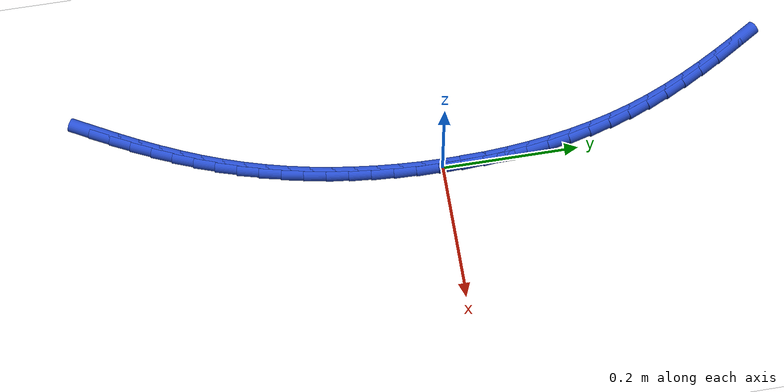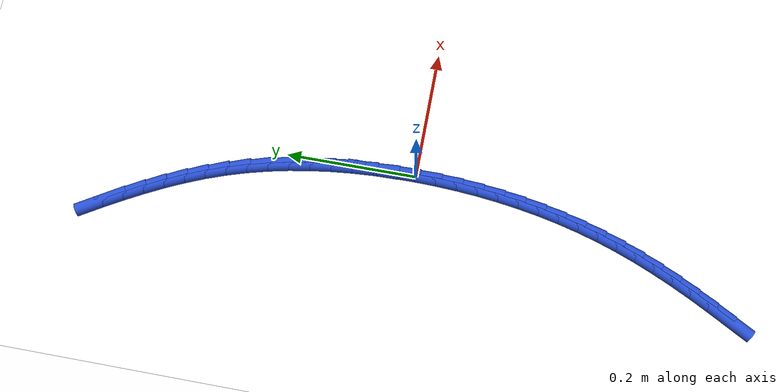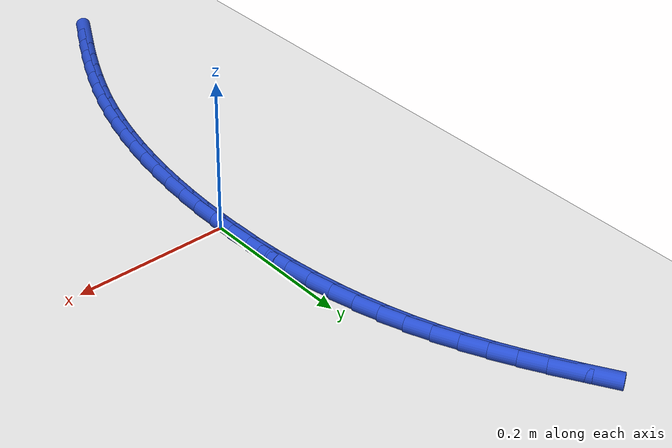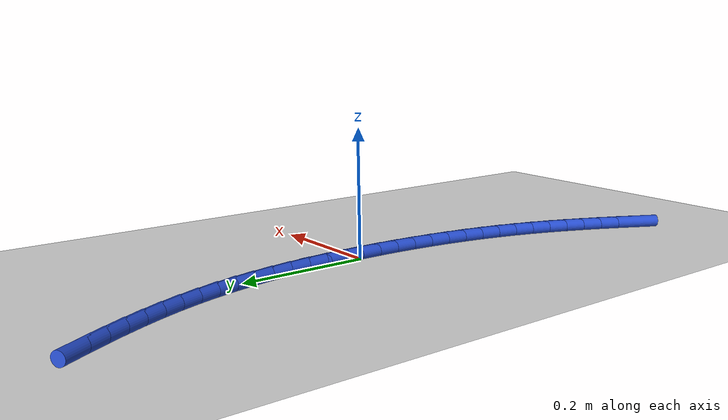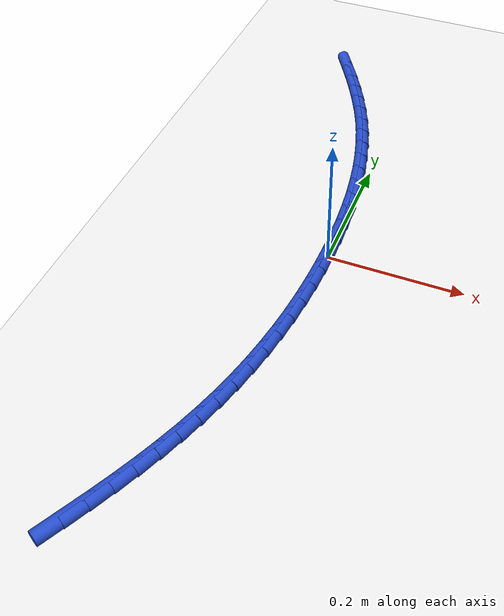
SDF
<sdf version="1.6">
 <world name="default">
  <model name="ground_plane">
   <static>1</static>
   <link name="link">
    <collision name="collision">
     <geometry><plane><normal>0 0 1</normal><size>100 100</size></plane></geometry>
     <surface><friction><ode><mu>100</mu><mu2>50</mu2></ode></friction></surface>
    </collision>
    <visual name="visual">
     <cast_shadows>0</cast_shadows>
     <geometry><plane><normal>0 0 1</normal><size>100 100</size></plane></geometry>
     <material>
      <script><uri>file://media/materials/scripts/gazebo.material</uri><name>Gazebo/WhiteGlow</name></script>
     </material>
    </visual>
   </link>
  </model>
  <model name="line">
   <link name="link_0">
    <pose>-8.673617379884035e-18 6.938893903907228e-18 0.01 0 1.57 -1.5631943589973318</pose>
    <collision name="collision">
     <geometry><cylinder><radius>0.01</radius><length>0.08</length></cylinder></geometry>
    </collision>
    <visual name="visual">
     <material>
      <script><name>Gazebo/Blue</name><uri>file://media/materials/scripts/gazebo.material</uri></script>
     </material>
     <geometry><cylinder><radius>0.01</radius><length>0.08</length></cylinder></geometry>
    </visual>
   </link>
   <link name="link_1">
    <pose>-0.00024784472184227464 0.03260207805600657 0.01 0 1.57 -1.533790845903109</pose>
    <collision name="collision">
     <geometry><cylinder><radius>0.01</radius><length>0.08</length></cylinder></geometry>
    </collision>
    <visual name="visual">
     <material>
      <script><name>Gazebo/Blue</name><uri>file://media/materials/scripts/gazebo.material</uri></script>
     </material>
     <geometry><cylinder><radius>0.01</radius><length>0.08</length></cylinder></geometry>
    </visual>
   </link>
   <link name="link_2">
    <pose>-0.0014533980365739327 0.065164902218467 0.01 0 1.57 -1.5024519334454958</pose>
    <collision name="collision">
     <geometry><cylinder><radius>0.01</radius><length>0.08</length></cylinder></geometry>
    </collision>
    <visual name="visual">
     <material>
      <script><name>Gazebo/Blue</name><uri>file://media/materials/scripts/gazebo.material</uri></script>
     </material>
     <geometry><cylinder><radius>0.01</radius><length>0.08</length></cylinder></geometry>
    </visual>
   </link>
   <link name="link_3">
    <pose>-0.0036753420684664316 0.09762525940442635 0.01 0 1.57 -1.4690571654817277</pose>
    <collision name="collision">
     <geometry><cylinder><radius>0.01</radius><length>0.08</length></cylinder></geometry>
    </collision>
    <visual name="visual">
     <material>
      <script><name>Gazebo/Blue</name><uri>file://media/materials/scripts/gazebo.material</uri></script>
     </material>
     <geometry><cylinder><radius>0.01</radius><length>0.08</length></cylinder></geometry>
    </visual>
   </link>
   <link name="link_4">
    <pose>-0.006972358941791235 0.12991993653092962 0.01 0 1.57 -1.4334882361334793</pose>
    <collision name="collision">
     <geometry><cylinder><radius>0.01</radius><length>0.08</length></cylinder></geometry>
    </collision>
    <visual name="visual">
     <material>
      <script><name>Gazebo/Blue</name><uri>file://media/materials/scripts/gazebo.material</uri></script>
     </material>
     <geometry><cylinder><radius>0.01</radius><length>0.08</length></cylinder></geometry>
    </visual>
   </link>
   <link name="link_5">
    <pose>-0.0114031307808198 0.16198572051502183 0.01 0 1.57 -1.395633090768564</pose>
    <collision name="collision">
     <geometry><cylinder><radius>0.01</radius><length>0.08</length></cylinder></geometry>
    </collision>
    <visual name="visual">
     <material>
      <script><name>Gazebo/Blue</name><uri>file://media/materials/scripts/gazebo.material</uri></script>
     </material>
     <geometry><cylinder><radius>0.01</radius><length>0.08</length></cylinder></geometry>
    </visual>
   </link>
   <link name="link_6">
    <pose>-0.017026339709823587 0.1937593982737481 0.01 0 1.57 -1.355391174735926</pose>
    <collision name="collision">
     <geometry><cylinder><radius>0.01</radius><length>0.08</length></cylinder></geometry>
    </collision>
    <visual name="visual">
     <material>
      <script><name>Gazebo/Blue</name><uri>file://media/materials/scripts/gazebo.material</uri></script>
     </material>
     <geometry><cylinder><radius>0.01</radius><length>0.08</length></cylinder></geometry>
    </visual>
   </link>
   <link name="link_7">
    <pose>-0.023900667853074056 0.22517775672415336 0.01 0 1.57 -1.3126799209108013</pose>
    <collision name="collision">
     <geometry><cylinder><radius>0.01</radius><length>0.08</length></cylinder></geometry>
    </collision>
    <visual name="visual">
     <material>
      <script><name>Gazebo/Blue</name><uri>file://media/materials/scripts/gazebo.material</uri></script>
     </material>
     <geometry><cylinder><radius>0.01</radius><length>0.08</length></cylinder></geometry>
    </visual>
   </link>
   <link name="link_8">
    <pose>-0.03208479733484265 0.2561775827832827 0.01 0 1.57 -1.2674424665983375</pose>
    <collision name="collision">
     <geometry><cylinder><radius>0.01</radius><length>0.08</length></cylinder></geometry>
    </collision>
    <visual name="visual">
     <material>
      <script><name>Gazebo/Blue</name><uri>file://media/materials/scripts/gazebo.material</uri></script>
     </material>
     <geometry><cylinder><radius>0.01</radius><length>0.08</length></cylinder></geometry>
    </visual>
   </link>
   <link name="link_9">
    <pose>-0.04163741027940083 0.286695663368181 0.01 0 1.57 -1.2201450502456008</pose>
    <collision name="collision">
     <geometry><cylinder><radius>0.01</radius><length>0.08</length></cylinder></geometry>
    </collision>
    <visual name="visual">
     <material>
      <script><name>Gazebo/Blue</name><uri>file://media/materials/scripts/gazebo.material</uri></script>
     </material>
     <geometry><cylinder><radius>0.01</radius><length>0.08</length></cylinder></geometry>
    </visual>
   </link>
   <link name="link_10">
    <pose>-0.052603454218247386 0.31667664067899987 0.01 0 1.57 -1.175355784121566</pose>
    <collision name="collision">
     <geometry><cylinder><radius>0.01</radius><length>0.08</length></cylinder></geometry>
    </collision>
    <visual name="visual">
     <material>
      <script><name>Gazebo/Blue</name><uri>file://media/materials/scripts/gazebo.material</uri></script>
     </material>
     <geometry><cylinder><radius>0.01</radius><length>0.08</length></cylinder></geometry>
    </visual>
   </link>
   <link name="link_11">
    <pose>-0.06490129482653313 0.346137553406577 0.01 0 1.57 -1.1356481326888397</pose>
    <collision name="collision">
     <geometry><cylinder><radius>0.01</radius><length>0.08</length></cylinder></geometry>
    </collision>
    <visual name="visual">
     <material>
      <script><name>Gazebo/Blue</name><uri>file://media/materials/scripts/gazebo.material</uri></script>
     </material>
     <geometry><cylinder><radius>0.01</radius><length>0.08</length></cylinder></geometry>
    </visual>
   </link>
   <link name="link_12">
    <pose>-0.0783810119978711 0.37513449521447456 0.01 0 1.57 -1.1011148195272438</pose>
    <collision name="collision">
     <geometry><cylinder><radius>0.01</radius><length>0.08</length></cylinder></geometry>
    </collision>
    <visual name="visual">
     <material>
      <script><name>Gazebo/Blue</name><uri>file://media/materials/scripts/gazebo.material</uri></script>
     </material>
     <geometry><cylinder><radius>0.01</radius><length>0.08</length></cylinder></geometry>
    </visual>
   </link>
   <link name="link_13">
    <pose>-0.09289202157249465 0.4037239395610827 0.01 0 1.57 -1.0717514270232071</pose>
    <collision name="collision">
     <geometry><cylinder><radius>0.01</radius><length>0.08</length></cylinder></geometry>
    </collision>
    <visual name="visual">
     <material>
      <script><name>Gazebo/Blue</name><uri>file://media/materials/scripts/gazebo.material</uri></script>
     </material>
     <geometry><cylinder><radius>0.01</radius><length>0.08</length></cylinder></geometry>
    </visual>
   </link>
   <link name="link_14">
    <pose>-0.10828373939063721 0.43196235990479137 0.01 0 1.57 -1.0475078406975615</pose>
    <collision name="collision">
     <geometry><cylinder><radius>0.01</radius><length>0.08</length></cylinder></geometry>
    </collision>
    <visual name="visual">
     <material>
      <script><name>Gazebo/Blue</name><uri>file://media/materials/scripts/gazebo.material</uri></script>
     </material>
     <geometry><cylinder><radius>0.01</radius><length>0.08</length></cylinder></geometry>
    </visual>
   </link>
   <link name="link_15">
    <pose>-0.1244055812925321 0.4599062297039905 0.01 0 1.57 -1.0283118102689512</pose>
    <collision name="collision">
     <geometry><cylinder><radius>0.01</radius><length>0.08</length></cylinder></geometry>
    </collision>
    <visual name="visual">
     <material>
      <script><name>Gazebo/Blue</name><uri>file://media/materials/scripts/gazebo.material</uri></script>
     </material>
     <geometry><cylinder><radius>0.01</radius><length>0.08</length></cylinder></geometry>
    </visual>
   </link>
   <link name="link_194">
    <pose>-0.13240891676840674 -0.49128358701604147 0.01 0 1.57 1.076474518854536</pose>
    <collision name="collision">
     <geometry><cylinder><radius>0.01</radius><length>0.08</length></cylinder></geometry>
    </collision>
    <visual name="visual">
     <material>
      <script><name>Gazebo/Blue</name><uri>file://media/materials/scripts/gazebo.material</uri></script>
     </material>
     <geometry><cylinder><radius>0.01</radius><length>0.08</length></cylinder></geometry>
    </visual>
   </link>
   <link name="link_195">
    <pose>-0.11703430901947032 -0.4627567482119977 0.01 0 1.57 1.0967771943091267</pose>
    <collision name="collision">
     <geometry><cylinder><radius>0.01</radius><length>0.08</length></cylinder></geometry>
    </collision>
    <visual name="visual">
     <material>
      <script><name>Gazebo/Blue</name><uri>file://media/materials/scripts/gazebo.material</uri></script>
     </material>
     <geometry><cylinder><radius>0.01</radius><length>0.08</length></cylinder></geometry>
    </visual>
   </link>
   <link name="link_196">
    <pose>-0.10232639292357265 -0.4340881601790381 0.01 0 1.57 1.120535093554734</pose>
    <collision name="collision">
     <geometry><cylinder><radius>0.01</radius><length>0.08</length></cylinder></geometry>
    </collision>
    <visual name="visual">
     <material>
      <script><name>Gazebo/Blue</name><uri>file://media/materials/scripts/gazebo.material</uri></script>
     </material>
     <geometry><cylinder><radius>0.01</radius><length>0.08</length></cylinder></geometry>
    </visual>
   </link>
   <link name="link_197">
    <pose>-0.08837279059864679 -0.40522126379652107 0.01 0 1.57 1.1477461611692792</pose>
    <collision name="collision">
     <geometry><cylinder><radius>0.01</radius><length>0.08</length></cylinder></geometry>
    </collision>
    <visual name="visual">
     <material>
      <script><name>Gazebo/Blue</name><uri>file://media/materials/scripts/gazebo.material</uri></script>
     </material>
     <geometry><cylinder><radius>0.01</radius><length>0.08</length></cylinder></geometry>
    </visual>
   </link>
   <link name="link_198">
    <pose>-0.07526112416262468 -0.37609949994380265 0.01 0 1.57 1.178373302555576</pose>
    <collision name="collision">
     <geometry><cylinder><radius>0.01</radius><length>0.08</length></cylinder></geometry>
    </collision>
    <visual name="visual">
     <material>
      <script><name>Gazebo/Blue</name><uri>file://media/materials/scripts/gazebo.material</uri></script>
     </material>
     <geometry><cylinder><radius>0.01</radius><length>0.08</length></cylinder></geometry>
    </visual>
   </link>
   <link name="link_199">
    <pose>-0.06307901573343869 -0.3466663095002401 0.01 0 1.57 1.2123349641000651</pose>
    <collision name="collision">
     <geometry><cylinder><radius>0.01</radius><length>0.08</length></cylinder></geometry>
    </collision>
    <visual name="visual">
     <material>
      <script><name>Gazebo/Blue</name><uri>file://media/materials/scripts/gazebo.material</uri></script>
     </material>
     <geometry><cylinder><radius>0.01</radius><length>0.08</length></cylinder></geometry>
    </visual>
   </link>
   <link name="link_200">
    <pose>-0.051914087429021136 -0.3168651333451901 0.01 0 1.57 1.249481566591976</pose>
    <collision name="collision">
     <geometry><cylinder><radius>0.01</radius><length>0.08</length></cylinder></geometry>
    </collision>
    <visual name="visual">
     <material>
      <script><name>Gazebo/Blue</name><uri>file://media/materials/scripts/gazebo.material</uri></script>
     </material>
     <geometry><cylinder><radius>0.01</radius><length>0.08</length></cylinder></geometry>
    </visual>
   </link>
   <link name="link_201">
    <pose>-0.04185359086625735 -0.28663974319954627 0.01 0 1.57 1.2881754333781197</pose>
    <collision name="collision">
     <geometry><cylinder><radius>0.01</radius><length>0.08</length></cylinder></geometry>
    </collision>
    <visual name="visual">
     <material>
      <script><name>Gazebo/Blue</name><uri>file://media/materials/scripts/gazebo.material</uri></script>
     </material>
     <geometry><cylinder><radius>0.01</radius><length>0.08</length></cylinder></geometry>
    </visual>
   </link>
   <link name="link_202">
    <pose>-0.03294667838517411 -0.2559679318035338 0.01 0 1.57 1.3256523981056247</pose>
    <collision name="collision">
     <geometry><cylinder><radius>0.01</radius><length>0.08</length></cylinder></geometry>
    </collision>
    <visual name="visual">
     <material>
      <script><name>Gazebo/Blue</name><uri>file://media/materials/scripts/gazebo.material</uri></script>
     </material>
     <geometry><cylinder><radius>0.01</radius><length>0.08</length></cylinder></geometry>
    </visual>
   </link>
   <link name="link_203">
    <pose>-0.025171877415581353 -0.22489055691157506 0.01 0 1.57 1.3616594029078135</pose>
    <collision name="collision">
     <geometry><cylinder><radius>0.01</radius><length>0.08</length></cylinder></geometry>
    </collision>
    <visual name="visual">
     <material>
      <script><name>Gazebo/Blue</name><uri>file://media/materials/scripts/gazebo.material</uri></script>
     </material>
     <geometry><cylinder><radius>0.01</radius><length>0.08</length></cylinder></geometry>
    </visual>
   </link>
   <link name="link_204">
    <pose>-0.01850005232711983 -0.19345531906198668 0.01 0 1.57 1.3962507457581255</pose>
    <collision name="collision">
     <geometry><cylinder><radius>0.01</radius><length>0.08</length></cylinder></geometry>
    </collision>
    <visual name="visual">
     <material>
      <script><name>Gazebo/Blue</name><uri>file://media/materials/scripts/gazebo.material</uri></script>
     </material>
     <geometry><cylinder><radius>0.01</radius><length>0.08</length></cylinder></geometry>
    </visual>
   </link>
   <link name="link_205">
    <pose>-0.012902067489430487 -0.1617099187930859 0.01 0 1.57 1.4294893671448345</pose>
    <collision name="collision">
     <geometry><cylinder><radius>0.01</radius><length>0.08</length></cylinder></geometry>
    </collision>
    <visual name="visual">
     <material>
      <script><name>Gazebo/Blue</name><uri>file://media/materials/scripts/gazebo.material</uri></script>
     </material>
     <geometry><cylinder><radius>0.01</radius><length>0.08</length></cylinder></geometry>
    </visual>
   </link>
   <link name="link_206">
    <pose>-0.008348787272154287 -0.12970205664318998 0.01 0 1.57 1.4614446193605473</pose>
    <collision name="collision">
     <geometry><cylinder><radius>0.01</radius><length>0.08</length></cylinder></geometry>
    </collision>
    <visual name="visual">
     <material>
      <script><name>Gazebo/Blue</name><uri>file://media/materials/scripts/gazebo.material</uri></script>
     </material>
     <geometry><cylinder><radius>0.01</radius><length>0.08</length></cylinder></geometry>
    </visual>
   </link>
   <link name="link_207">
    <pose>-0.004811076044932185 -0.09747943315061619 0.01 0 1.57 1.4921904043337706</pose>
    <collision name="collision">
     <geometry><cylinder><radius>0.01</radius><length>0.08</length></cylinder></geometry>
    </collision>
    <visual name="visual">
     <material>
      <script><name>Gazebo/Blue</name><uri>file://media/materials/scripts/gazebo.material</uri></script>
     </material>
     <geometry><cylinder><radius>0.01</radius><length>0.08</length></cylinder></geometry>
    </visual>
   </link>
   <link name="link_208">
    <pose>-0.002259798177405132 -0.06508974885368178 0.01 0 1.57 1.5218036657631018</pose>
    <collision name="collision">
     <geometry><cylinder><radius>0.01</radius><length>0.08</length></cylinder></geometry>
    </collision>
    <visual name="visual">
     <material>
      <script><name>Gazebo/Blue</name><uri>file://media/materials/scripts/gazebo.material</uri></script>
     </material>
     <geometry><cylinder><radius>0.01</radius><length>0.08</length></cylinder></geometry>
    </visual>
   </link>
   <link name="link_209">
    <pose>-0.0006658180392140659 -0.032580704290703255 0.01 0 1.57 1.550363208827721</pose>
    <collision name="collision">
     <geometry><cylinder><radius>0.01</radius><length>0.08</length></cylinder></geometry>
    </collision>
    <visual name="visual">
     <material>
      <script><name>Gazebo/Blue</name><uri>file://media/materials/scripts/gazebo.material</uri></script>
     </material>
     <geometry><cylinder><radius>0.01</radius><length>0.08</length></cylinder></geometry>
    </visual>
   </link>
   <link name="link_210">
    <pose>-1.474514954580286e-17 -1.3183898417423734e-16 0.01 0 1.57 -1.5636438391545706</pose>
    <collision name="collision">
     <geometry><cylinder><radius>0.01</radius><length>0.08</length></cylinder></geometry>
    </collision>
    <visual name="visual">
     <material>
      <script><name>Gazebo/Blue</name><uri>file://media/materials/scripts/gazebo.material</uri></script>
     </material>
     <geometry><cylinder><radius>0.01</radius><length>0.08</length></cylinder></geometry>
    </visual>
   </link>
   <link name="link_211">
    <pose>-0.00023320842940385746 0.03260466348011259 0.01 0 1.57 -1.5369520404170618</pose>
    <collision name="collision">
     <geometry><cylinder><radius>0.01</radius><length>0.08</length></cylinder></geometry>
    </collision>
    <visual name="visual">
     <material>
      <script><name>Gazebo/Blue</name><uri>file://media/materials/scripts/gazebo.material</uri></script>
     </material>
     <geometry><cylinder><radius>0.01</radius><length>0.08</length></cylinder></geometry>
    </visual>
   </link>
   <link name="link_212">
    <pose>-0.0013363076970666571 0.06518558561131844 0.01 0 1.57 -1.5502991488315043</pose>
    <collision name="collision">
     <geometry><cylinder><radius>0.01</radius><length>0.08</length></cylinder></geometry>
    </collision>
    <visual name="visual">
     <material>
      <script><name>Gazebo/Blue</name><uri>file://media/materials/scripts/gazebo.material</uri></script>
     </material>
     <geometry><cylinder><radius>0.01</radius><length>0.08</length></cylinder></geometry>
    </visual>
   </link>
  </model>
 </world>
</sdf>
